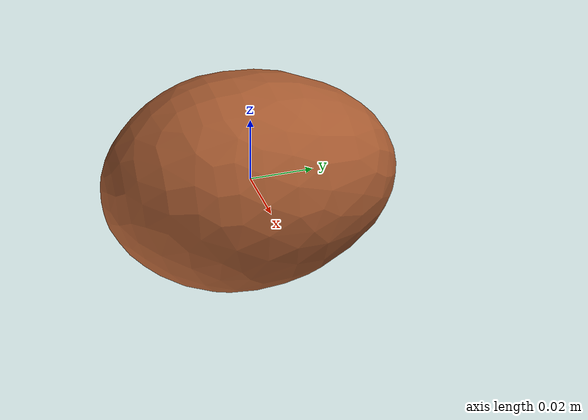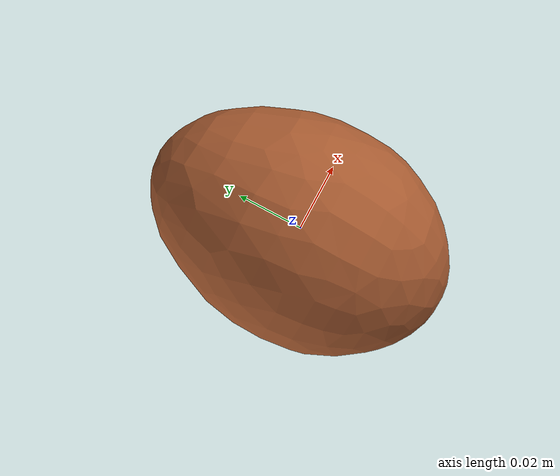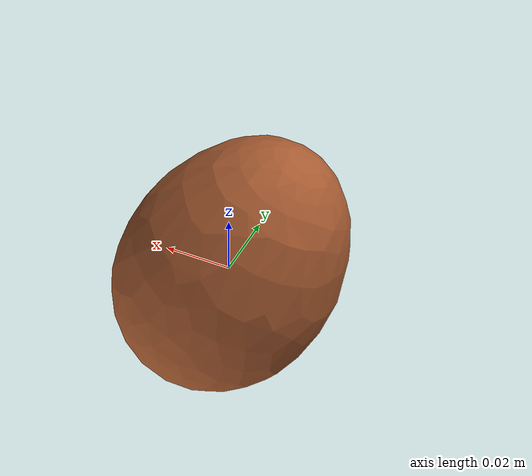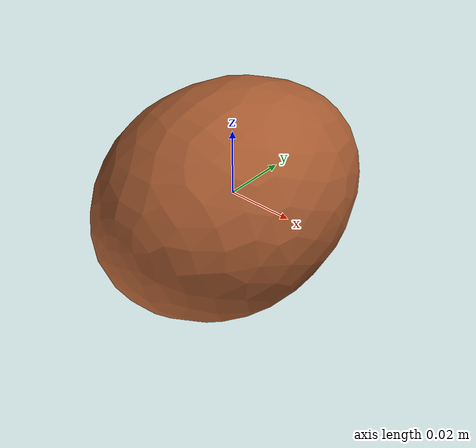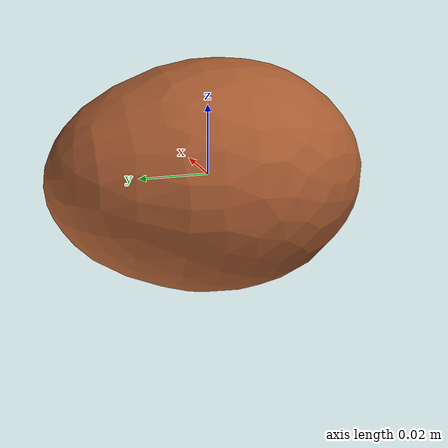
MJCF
<mujoco model="Egg_27">
  <compiler autolimits="true" boundmass="0.01" angle="radian"/>
  <default>
    <default class="/">
      <default class="__VISUAL_MJT__">
        <geom contype="0" conaffinity="0" group="0"/>
      </default>
      <default class="__STRUCTURAL_MJT__">
        <geom contype="8" conaffinity="15" group="4" friction="0.90000000000000002 0.90000000000000002 0.001" solref="0.025000000000000001 1" solimp="0.998 0.998 0.001"/>
      </default>
      <default class="__DYNAMIC_MJT__">
        <geom contype="1" conaffinity="15" group="4" friction="0.90000000000000002 0.90000000000000002 0.001" solref="0.025000000000000001 1" solimp="0.998 0.998 0.001"/>
      </default>
    </default>
  </default>
  <asset>
    <material name="material_Egg3_Mat" class="/" specular="0.5" shininess="0.5" rgba="0.66911770000000004 0.3643962 0.19679930000000001 1"/>
    <mesh name="Egg_27_egg_27" class="/" file="Egg_27_egg_27/Egg_27_egg_27.obj" scale="1 1 1"/>
  </asset>
  <worldbody>
    <body name="Egg_27">
      <joint name="Egg_27_free" class="/" type="free" pos="0 0 0" axis="0 0 1" stiffness="0" range="0 0" armature="0" damping="0.10000000000000001" frictionloss="0"/>
      <body name="Egg_27_egg_27" pos="-0.00017000000000000001 0 -0.00012" quat="1 0 0 0">
        <geom name="Egg_27_egg_27" class="__VISUAL_MJT__" type="mesh" material="material_Egg3_Mat" shellinertia="true" mesh="Egg_27_egg_27"/>
        <geom name="Egg_27_PrimitiveCollider_0" class="__DYNAMIC_MJT__" type="capsule" size="0.030229298397898674 0.015442019328474998" rgba="0 1 0 1" pos="-0 0 0" quat="0.70710678118654757 0.70710678118654746 0 0"/>
      </body>
    </body>
  </worldbody>
</mujoco>
